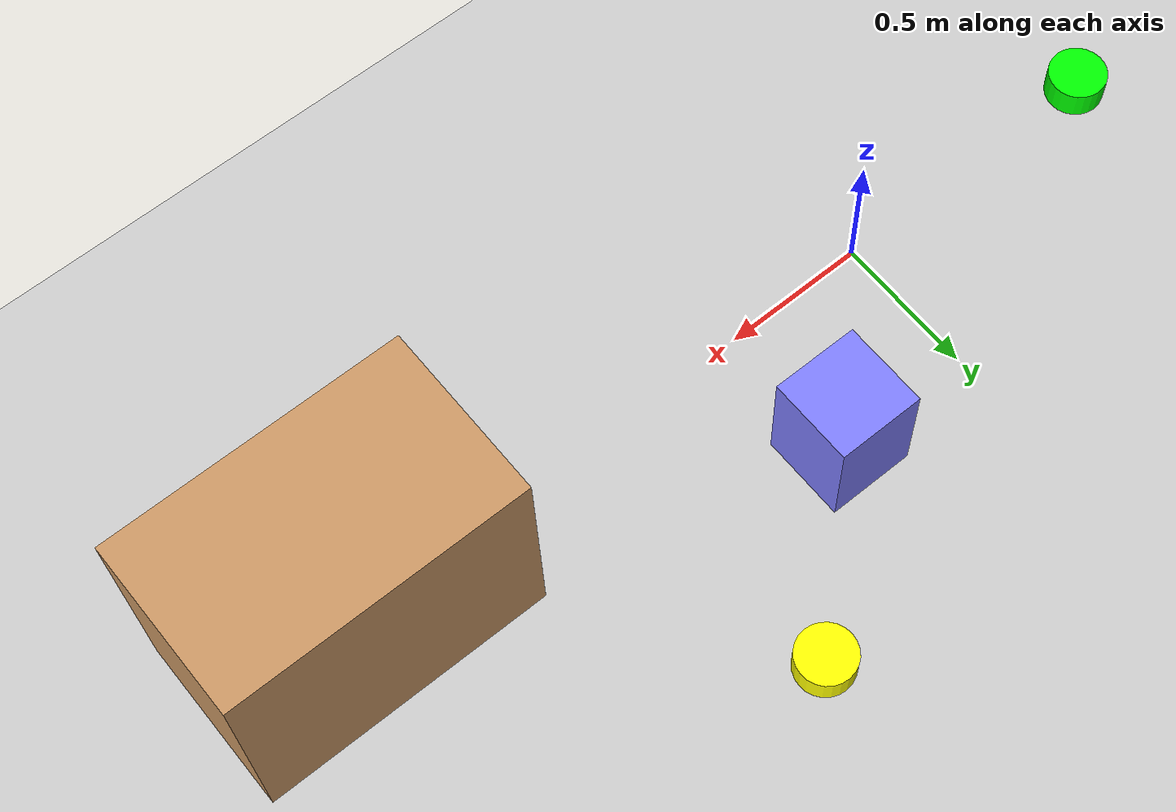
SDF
<sdf version="1.7">
 <world name="huminoid_world">
  <physics name="default_physics" type="ode">
   <gravity>0 0 -9.8</gravity>
   <ode>
    <solver><type>quick</type><iters>10</iters><sor>1.3</sor></solver>
    <constraints><cfm>0.000001</cfm><erp>0.2</erp></constraints>
   </ode>
  </physics>
  <include><uri>model://ground_plane</uri></include>
  <include><uri>model://sun</uri></include>
  <model name="test_table">
   <pose>2 0 0.4 0 0 0</pose>
   <link name="table_link">
    <collision name="collision"><geometry><box><size>1.0 0.6 0.8</size></box></geometry></collision>
    <visual name="visual">
     <geometry><box><size>1.0 0.6 0.8</size></box></geometry>
     <material><ambient>0.8 0.6 0.4 1</ambient></material>
    </visual>
    <inertial><mass>30.0</mass><inertia><ixx>1.0</ixx><iyy>1.0</iyy><izz>1.0</izz></inertia></inertial>
   </link>
  </model>
  <model name="path_marker_1">
   <pose>-1 0 0.05 0 0 0</pose>
   <link name="marker_link">
    <visual name="visual">
     <geometry><cylinder><radius>0.1</radius><length>0.1</length></cylinder></geometry>
     <material><ambient>0 1 0 1</ambient></material>
    </visual>
   </link>
  </model>
  <model name="path_marker_2">
   <pose>1 1 0.05 0 0 0</pose>
   <link name="marker_link">
    <visual name="visual">
     <geometry><cylinder><radius>0.1</radius><length>0.1</length></cylinder></geometry>
     <material><ambient>1 1 0 1</ambient></material>
    </visual>
   </link>
  </model>
  <model name="obstacle_box">
   <pose>0.5 0.5 0.2 0 0 0</pose>
   <link name="box_link">
    <collision name="collision"><geometry><box><size>0.3 0.3 0.4</size></box></geometry></collision>
    <visual name="visual">
     <geometry><box><size>0.3 0.3 0.4</size></box></geometry>
     <material><ambient>0.5 0.5 1.0 1</ambient></material>
    </visual>
    <inertial><mass>5.0</mass><inertia><ixx>0.1</ixx><iyy>0.1</iyy><izz>0.1</izz></inertia></inertial>
   </link>
  </model>
 </world>
</sdf>
